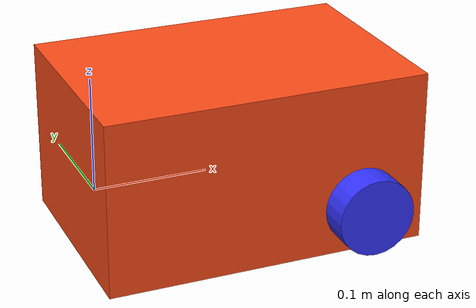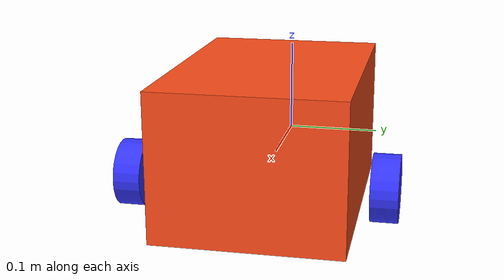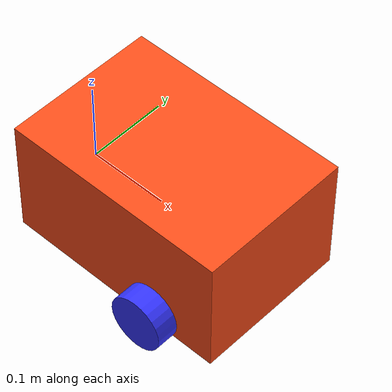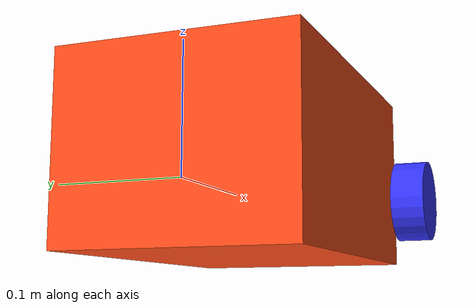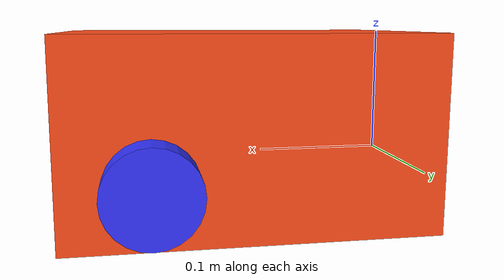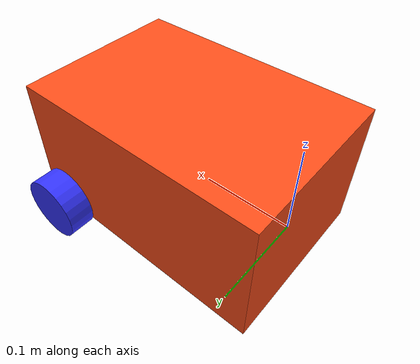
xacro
<?xml version="1.0"?>
<robot xmlns:xacro="http://www.ros.org/wiki/xacro" >

    <xacro:include filename="inertial_macros.xacro"/>

    <xacro:property name="chassis_length" value="0.28"/>
    <xacro:property name="chassis_width" value="0.19"/>
    <xacro:property name="chassis_height" value="0.15"/>
    <xacro:property name="chassis_mass" value="2.0"/>
    <xacro:property name="wheel_radius" value="0.03325"/>
    <xacro:property name="wheel_thickness" value="0.0266"/>
    <xacro:property name="wheel_mass" value="0.03"/>
    <xacro:property name="wheel_offset_x" value="0.02"/>
    <xacro:property name="wheel_offset_y" value="0.125"/>
    <xacro:property name="wheel_offset_z" value="0"/>
    <xacro:property name="caster_wheel_radius" value="0.02"/>
    <xacro:property name="caster_wheel_mass" value="0.03"/>
    <xacro:property name="caster_wheel_offset_x" value="0.02"/>

    <material name="white">
        <color rgba="1 1 1 1" />
    </material>

    <material name="orange">
        <color rgba="1 0.3 0.1 1"/>
    </material>

    <material name="blue">
        <color rgba="0.2 0.2 1 1"/>
    </material>

    <material name="black">
        <color rgba="0 0 0 1"/>
    </material>

    <material name="red">
        <color rgba="1 0 0 1"/>
    </material>

    <!-- BASE LINK -->

    <link name="base_link">

    </link>
    <!-- Base_Footprint Link-->

    <joint name="base_footprint_joint" type="fixed">
        <parent link="base_link"/>
        <child link="base_footprint"/>
        <origin xyz="0 0 0" rpy="0 0 0"/>
    </joint>

    <link name="base_footprint">

    </link>

    <!-- CHASSIS LINK -->

    <joint name="chassis_joint" type="fixed">
        <parent link="base_link"/>
        <child link="chassis"/>
        <origin xyz="-${wheel_offset_x} 0 ${-wheel_offset_z}"/>
    </joint>

    <link name="chassis">
        <visual>
            <origin xyz="${chassis_length/2} 0 0.025"/>
            <geometry>
                <box size="${chassis_length} ${chassis_width} ${chassis_height}"/>
            </geometry>
            <material name="orange"/>
        </visual>
        <collision>
            <origin xyz="${chassis_length/2} 0 ${chassis_height/2}"/>
            <geometry>
                <box size="${chassis_length} ${chassis_width} ${chassis_height}"/>
            </geometry>
        </collision>
        <xacro:inertial_box mass="0.5" x="${chassis_length}" y="${chassis_width}" z="${chassis_height}">
            <origin xyz="${chassis_length/2} 0 ${chassis_height/2}" rpy="0 0 0"/>
        </xacro:inertial_box>
    </link>

    <gazebo reference="chassis">
        <material>Gazebo/Orange</material>
    </gazebo>

    <!-- LEFT WHEEL LINK -->

    <joint name="left_wheel_joint" type="continuous">
        <parent link="base_link"/>
        <child link="left_wheel"/>
        <origin xyz="0.195 ${wheel_offset_y} 0" rpy="-${pi/2} 0 0" />
        <axis xyz="0 0 1"/>
    </joint>

    <link name="left_wheel">
        <visual>
            <geometry>
                <cylinder radius="${wheel_radius}" length="${wheel_thickness}"/>
            </geometry>
            <material name="blue"/>
        </visual>
        <collision>
            <geometry>
                <sphere radius="${wheel_radius}"/>
            </geometry>
        </collision>
        <xacro:inertial_cylinder mass="${wheel_mass}" length="${wheel_thickness}" radius="${wheel_radius}">
            <origin xyz="0 0 0" rpy="0 0 0"/>
        </xacro:inertial_cylinder>
    </link>

    <gazebo reference="left_wheel">
        <material>Gazebo/Blue</material>
    </gazebo>

    <!-- RIGHT WHEEL LINK -->

    <joint name="right_wheel_joint" type="continuous">
        <parent link="base_link"/>
        <child link="right_wheel"/>
        <origin xyz="0.195 ${-wheel_offset_y} 0" rpy="${pi/2} 0 0" />
        <axis xyz="0 0 -1"/>
    </joint>

    <link name="right_wheel">
        <visual>
            <geometry>
                <cylinder radius="${wheel_radius}" length="${wheel_thickness}"/>
            </geometry>
            <material name="blue"/>
        </visual>
        <collision>
            <geometry>
                <sphere radius="${wheel_radius}"/>
            </geometry>
        </collision>
        <xacro:inertial_cylinder mass="${wheel_mass}" length="${wheel_thickness}" radius="${wheel_radius}">
            <origin xyz="0 0 0" rpy="0 0 0"/>
        </xacro:inertial_cylinder>
    </link>

    <gazebo reference="right_wheel">
        <material>Gazebo/Blue</material>
    </gazebo>

    <!-- CASTER WHEEL LINK -->

    <joint name="caster_wheel_joint" type="fixed">
        <parent link="chassis"/>
        <child link="caster_wheel"/>
        <origin xyz="${caster_wheel_offset_x} 0 0"/>
    </joint>

    <link name="caster_wheel">
        <visual>
            <geometry>
                <sphere radius="${caster_wheel_radius}"/>
            </geometry>
            <material name="white"/>
        </visual>
        <collision>
            <geometry>
                <sphere radius="${caster_wheel_radius}"/>
            </geometry>
        </collision>
        <xacro:inertial_sphere mass="${caster_wheel_mass}" radius="${caster_wheel_radius}">
            <origin xyz="0 0 0" rpy="0 0 0"/>
        </xacro:inertial_sphere>
    </link>

    <link name="imu_link"/>

    <joint
        name="imu_joint"
        type="fixed">
        <origin
        xyz="0.0 0 0.0"
        rpy="0 -0.07 0" />
        <parent
        link="base_link" />
        <child
        link="imu_link" />
        <axis
        xyz="1 0 0" />
    </joint>

    <gazebo reference="caster_wheel">
        <material>Gazebo/White</material>
        <mu1 value="0.001"/>
        <mu2 value="0.001"/>
    </gazebo>

</robot>
